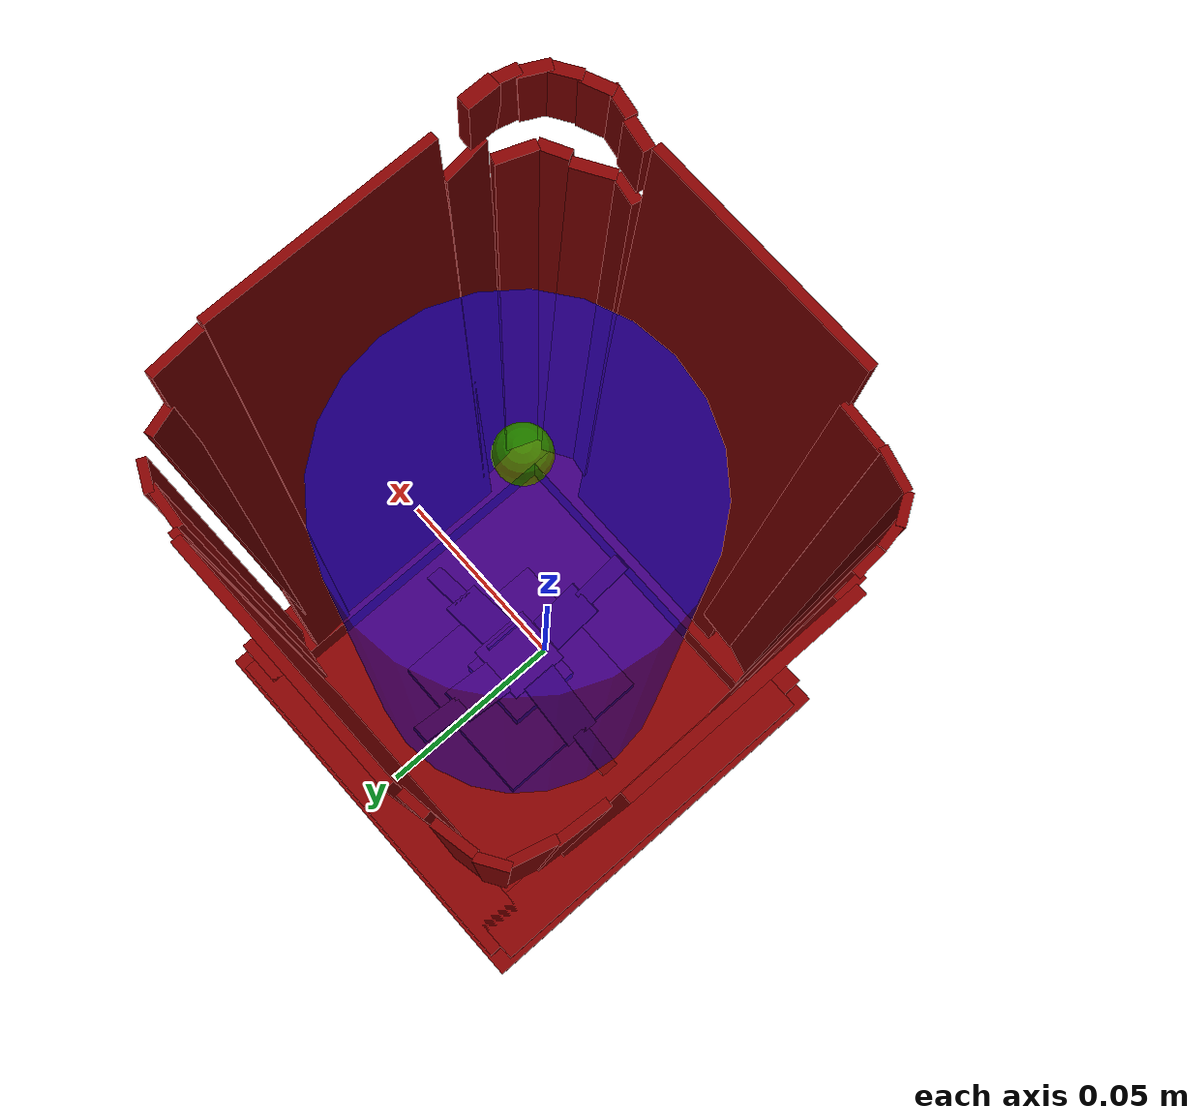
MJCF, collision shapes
<mujoco model="model">
  <option timestep="0.002" gravity="0.0 0.0 -9.81"/>
  <compiler angle="radian"/>
  <asset>
    <mesh file="visuals/blade.obj" name="blade_vis"/>
    <mesh file="visuals/pitcher.obj" name="pitcher_vis"/>
    <mesh file="visuals/pitcher_main.obj" name="pitcher_main_vis"/>
    <texture file="visuals/T_BC001.png" name="pitcher_material" type="2d"/>
    <material name="pitcher_material" rgba="1 1 1 1.0" texture="pitcher_material" shininess="0.2512328028678894" specular="0.3103448502657381"/>
    <texture file="visuals/T_BC001.png" name="blade_material" type="2d"/>
    <material name="blade_material" rgba="1 1 1 1.0" texture="blade_material" shininess="0.2512328028678894" specular="0.3103448502657381"/>
    <material name="pitcher_main_material" rgba="0.24127569794654846 0.24127569794654846 0.24127569794654846 0.800000011920929" shininess="0.2512328028678894" specular="0.3103448502657381"/>
  </asset>
  <default>
    <default class="visual">
      <geom conaffinity="0" contype="0" group="1" type="mesh"/>
    </default>
    <default class="collision">
      <geom group="0" rgba="0.5 0 0 0.5" density="1.0" solref="0.004 1" solimp="0.998 0.998 0.001"/>
    </default>
    <default class="spawn">
      <geom group="0" rgba="1 1 1 0.5" contype="0" conaffinity="0"/>
      <site group="0" rgba="1 1 1 0.5"/>
    </default>
    <default class="region">
      <geom group="1" conaffinity="0" contype="0" rgba="0 1 0 0" mass="0"/>
    </default>
  </default>
  <worldbody>
    <body>
      <body name="object">
        <body name="pitcher">
          <geom mesh="pitcher_vis" type="mesh" solimp="0.998 0.998 0.001" solref="0.001 1" friction="0.95 0.3 0.1" class="visual" material="pitcher_material"/>
          <geom type="box" pos="-0.04609489 0.00911048 -0.00983476" size="0.006394772324711084 0.04842328280210495 0.006411881186068058" quat="1.0 0.0 0.0 0.0" class="collision"/>
          <geom type="box" pos="0.04653638 0.00911048 -0.00983476" size="0.006394772324711084 0.04842328280210495 0.006411881186068058" quat="1.0 0.0 0.0 0.0" class="collision"/>
          <geom type="box" pos="-0.00043082 0.05444177 -0.00983476" size="0.04842328280210495 0.006394779775291681 0.006411881186068058" quat="1.0 0.0 0.0 0.0" class="collision"/>
          <geom type="box" pos="-0.00043082 -0.03827661 -0.00983476" size="0.04842328280210495 0.006394779775291681 0.006411881186068058" quat="1.0 0.0 0.0 0.0" class="collision"/>
          <geom type="box" pos="-0.00000000 0.00826755 -0.01121204" size="0.020905563607811928 0.020905563607811928 0.0034535357262939215" quat="1.0 0.0 0.0 0.0" class="collision"/>
          <geom type="box" pos="-0.00000000 0.00826755 -0.00010412" size="0.009490281343460083 0.009490281343460083 0.003182109212502837" quat="1.0 0.0 0.0 0.0" class="collision"/>
          <geom type="box" pos="-0.00008311 0.00792829 -0.01976543" size="0.053785525262355804 0.053782425820827484 0.006159136537462473" quat="1.0 0.0 0.0 0.0" class="collision"/>
          <body name="blade">
            <geom mesh="blade_vis" type="mesh" solimp="0.998 0.998 0.001" solref="0.001 1" friction="0.95 0.3 0.1" class="visual" material="blade_material"/>
            <geom type="box" pos="0.00075530 0.00803136 0.01775066" size="0.007751177065074444 0.007751177065074444 0.000493193103466183" quat="1.0 0.0 0.0 0.0" class="collision"/>
            <geom type="box" pos="-0.00006391 0.02200975 0.02075417" size="0.004649334121495485 0.006977303884923458 0.0005624762270599604" quat="0.9774072766304016 0.21136470139026642 0.0 0.0" class="collision"/>
            <geom type="box" pos="-0.00006391 0.03361954 0.02602175" size="0.0023086860310286283 0.006977303884923458 0.0005624761688522995" quat="0.9774072766304016 0.21136470139026642 0.0 0.0" class="collision"/>
            <geom type="box" pos="-0.01479433 0.00816089 0.01296738" size="0.004649334121495485 0.009789085015654564 0.0005624762852676213" quat="0.6795143485069275 -0.19560261070728302 -0.19560261070728302 0.6795141696929932" class="collision"/>
            <geom type="box" pos="-0.02797359 0.00816089 0.00469440" size="0.0023086860310286283 0.006977303884923458 0.0005624761106446385" quat="0.6795143485069275 -0.19560259580612183 -0.1956026256084442 0.6795141696929932" class="collision"/>
            <geom type="box" pos="-0.00003605 -0.00649828 0.02093816" size="0.004649334121495485 0.006977303884923458 0.0005624762270599604" quat="7.37921936888597e-08 1.5957596133375773e-08 0.21136470139026642 0.9774072766304016" class="collision"/>
            <geom type="box" pos="-0.00003605 -0.01810807 0.02620574" size="0.0023086860310286283 0.006977303884923458 0.0005624761688522995" quat="7.37921936888597e-08 1.5957596133375773e-08 0.2113647162914276 0.9774072766304016" class="collision"/>
            <geom type="box" pos="0.01469438 0.00820850 0.01315137" size="0.004649334121495485 0.009789085015654564 0.0005624762852676213" quat="0.6795143485069275 -0.1956026405096054 0.19560255110263824 -0.6795141696929932" class="collision"/>
            <geom type="box" pos="0.02787363 0.00820849 0.00487839" size="0.0023086860310286283 0.006977303884923458 0.0005624761106446385" quat="0.6795143485069275 -0.19560261070728302 0.19560261070728302 -0.6795141696929932" class="collision"/>
            <geom type="cylinder" pos="0.00006782 0.00798056 0.01237917" size="0.006157022900879383 0.005274960771203041" quat="1.0 0.0 0.0 0.0" class="collision"/>
          </body>
          <body name="pitcher_main">
            <geom class="region" type="cylinder" size="0.035252515226602554 0.06503906846046448" pos="0.00049619 0.00841177 0.09565107" rgba="0 0 1 0.5" name="reg_int"/>
            <geom mesh="pitcher_main_vis" type="mesh" solimp="0.998 0.998 0.001" solref="0.001 1" friction="0.95 0.3 0.1" class="visual" material="pitcher_main_material"/>
            <geom class="collision" size="0.0389 0.0376 0.0006" pos="-0.0021 -0.0004 -0.0172" type="box"/>
            <geom class="collision" size="0.0253 0.0010 0.0887" pos="-0.0003 -0.0388 0.0897" quat="0.9997 0.0240 0 0" type="box"/>
            <geom class="collision" size="0.0242 0.0011 0.0887" pos="-0.0459 0.0071 0.0897" quat="0.7069 0.0170 -0.0170 -0.7069" type="box"/>
            <geom class="collision" size="0.0253 0.0010 0.0887" pos="-0.0003 0.0523 0.0897" quat="0.0000 0.0000 -0.0240 -0.9997" type="box"/>
            <geom class="collision" size="0.0244 0.0009 0.0887" pos="0.0458 0.0071 0.0897" quat="0.7069 0.0170 0.0170 0.7069" type="box"/>
            <geom class="collision" size="0.0057 0.0009 0.0887" pos="0.0446 0.0375 0.0897" quat="0.6785 0.0176 0.0163 0.7342" type="box"/>
            <geom class="collision" size="0.0031 0.0009 0.0757" pos="0.0442 0.042 0.09" quat="0.5984 -0.0014 0.0298 0.8007" type="box"/>
            <geom class="collision" size="0.0031 0.0009 0.0749" pos="0.04 0.0499 0.09" quat="0.2285 0.0020 0.0241 0.9732" type="box"/>
            <geom class="collision" size="0.0031 0.0009 0.0749" pos="0.0268 0.0524 0.0901" quat="0.0167 0.0071 0.0231 0.9996" type="box"/>
            <geom class="collision" size="0.0043 0.0009 0.0749" pos="0.0338 0.0508 0.09" quat="0.0502 0.0063 0.0233 0.9984" type="box"/>
            <geom class="collision" size="0.0031 0.0009 0.0757" pos="-0.0248 0.0521 0.0896" quat="0.0673 0.0204 -0.0217 -0.9973" type="box"/>
            <geom class="collision" size="0.0031 0.0009 0.0749" pos="-0.04 0.0501 0.0892" quat="0.2816 0.0176 -0.0165 -0.9592" type="box"/>
            <geom class="collision" size="0.0043 0.0009 0.0749" pos="-0.0429 0.0442 0.0892" quat="0.6121 0.0104 -0.0218 -0.7904" type="box"/>
            <geom class="collision" size="0.0042 0.0009 0.0749" pos="-0.0333 0.0522 0.0895" quat="0.1021 0.0203 -0.0130 -0.9945" type="box"/>
            <geom class="collision" size="0.0052 0.0009 0.0749" pos="-0.0446 0.0355 0.0893" quat="0.6816 0.0084 -0.0226 -0.7313" type="box"/>
            <geom class="collision" size="0.0031 0.0009 0.0749" pos="-0.0428 -0.0328 0.0892" quat="0.8758 0.0241 0.0007 -0.4821" type="box"/>
            <geom class="collision" size="0.0043 0.0009 0.0749" pos="-0.0369 -0.0364 0.0892" quat="0.9913 0.0227 -0.0081 -0.1294" type="box"/>
            <geom class="collision" size="0.0052 0.0009 0.0749" pos="-0.0282 -0.0375 0.0893" quat="0.9990 0.0219 -0.0102 -0.0384" type="box"/>
            <geom class="collision" size="0.0031 0.0009 0.0749" pos="-0.0434 -0.0293 0.0892" quat="0.7740 0.0239 -0.0037 -0.6328" type="box"/>
            <geom class="collision" size="0.0031 0.0009 0.0749" pos="-0.044 -0.0234 0.0892" quat="0.7331 0.0236 -0.0051 -0.6797" type="box"/>
            <geom class="collision" size="0.0031 0.0009 0.0749" pos="-0.0451 -0.0182 0.0892" quat="0.7331 0.0236 -0.0051 -0.6797" type="box"/>
            <geom class="collision" size="0.0032 0.0012 0.0694" pos="0.0402 -0.0356 0.0892" quat="0.9723 0.0174 0.0168 0.2324" type="box"/>
            <geom class="collision" size="0.0043 0.0012 0.0694" pos="0.0443 -0.0301 0.0892" quat="0.8205 0.0223 0.0093 0.5711" type="box"/>
            <geom class="collision" size="0.0052 0.0009 0.0749" pos="0.0463 -0.0216 0.0893" quat="0.6607 0.0217 0.0105 0.7503" type="box"/>
            <geom class="collision" size="0.0032 0.0012 0.0694" pos="0.028 -0.0389 0.0892" quat="0.9953 0.0219 0.0102 -0.0943" type="box"/>
            <geom class="collision" size="0.0043 0.0012 0.0694" pos="0.0346 -0.037 0.0892" quat="0.9611 0.0241 0.0016 0.2753" type="box"/>
            <geom class="collision" size="0.0032 0.0012 0.0067" pos="0.0285 -0.0423 0.171" quat="0.9953 0.0219 0.0102 -0.0943" type="box"/>
            <geom class="collision" size="0.0032 0.0012 0.0067" pos="0.0348 -0.0441 0.171" quat="0.9953 0.0219 0.0102 -0.0943" type="box"/>
            <geom class="collision" size="0.0032 0.0012 0.0067" pos="0.0395 -0.0434 0.171" quat="0.9808 0.0180 0.0161 0.1937" type="box"/>
            <geom class="collision" size="0.0032 0.0012 0.0067" pos="0.0448 -0.041 0.171" quat="0.9604 0.0166 0.0175 0.2774" type="box"/>
            <geom class="collision" size="0.0032 0.0012 0.0067" pos="0.0484 -0.0375 0.171" quat="0.8557 0.0115 0.0212 0.5170" type="box"/>
            <geom class="collision" size="0.0032 0.0012 0.0067" pos="0.0508 -0.0328 0.171" quat="0.7959 0.0091 0.0223 0.6049" type="box"/>
            <geom class="collision" size="0.0015 0.0034 0.0068" pos="0.0515 -0.0279 0.171" type="box"/>
          </body>
        </body>
        <geom class="region" name="reg_bbox" density="0" type="box" pos="7.149999999999865e-05 0.007922499999999999 0.07598250000000001" size="0.054335499999999995 0.0544095 0.102181"/>
      </body>
      <site rgba="0 1 0 0.5" size="0.005" pos="0.00034126 0.00730078 0.177" name="anchor_site"/>
    </body>
  </worldbody>
</mujoco>
